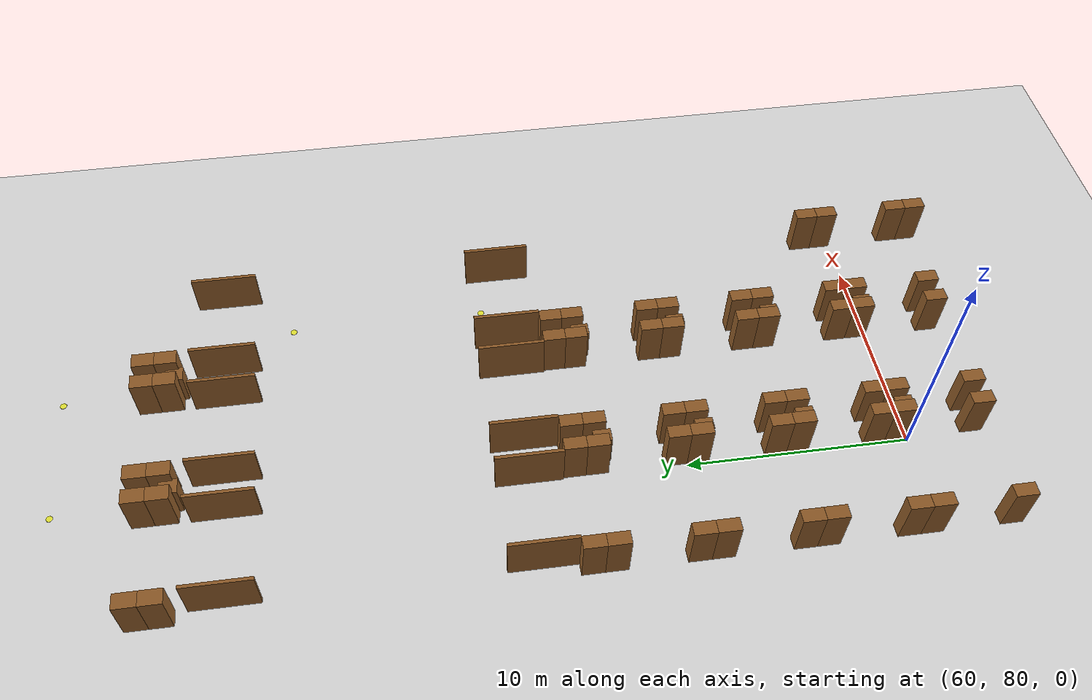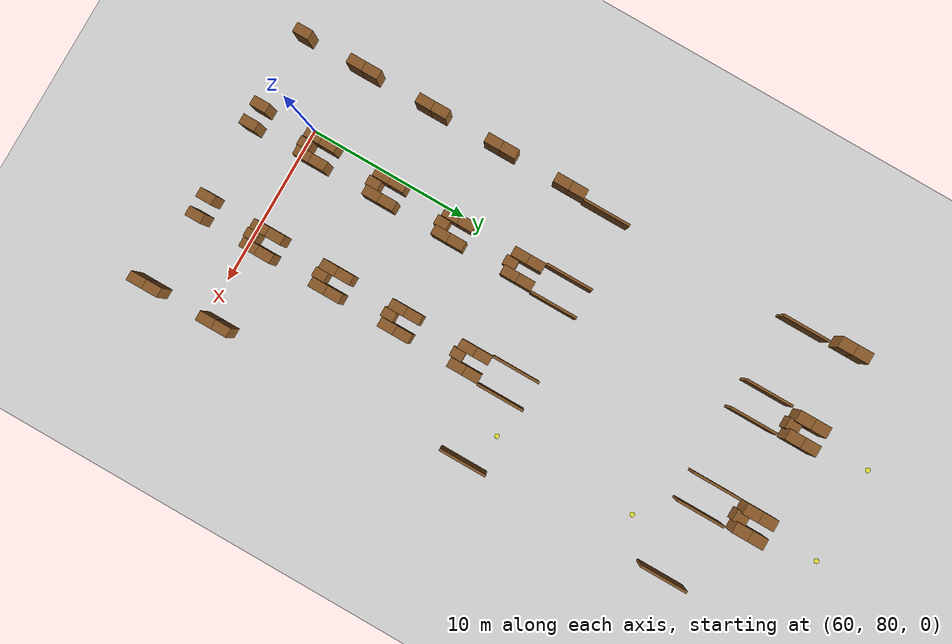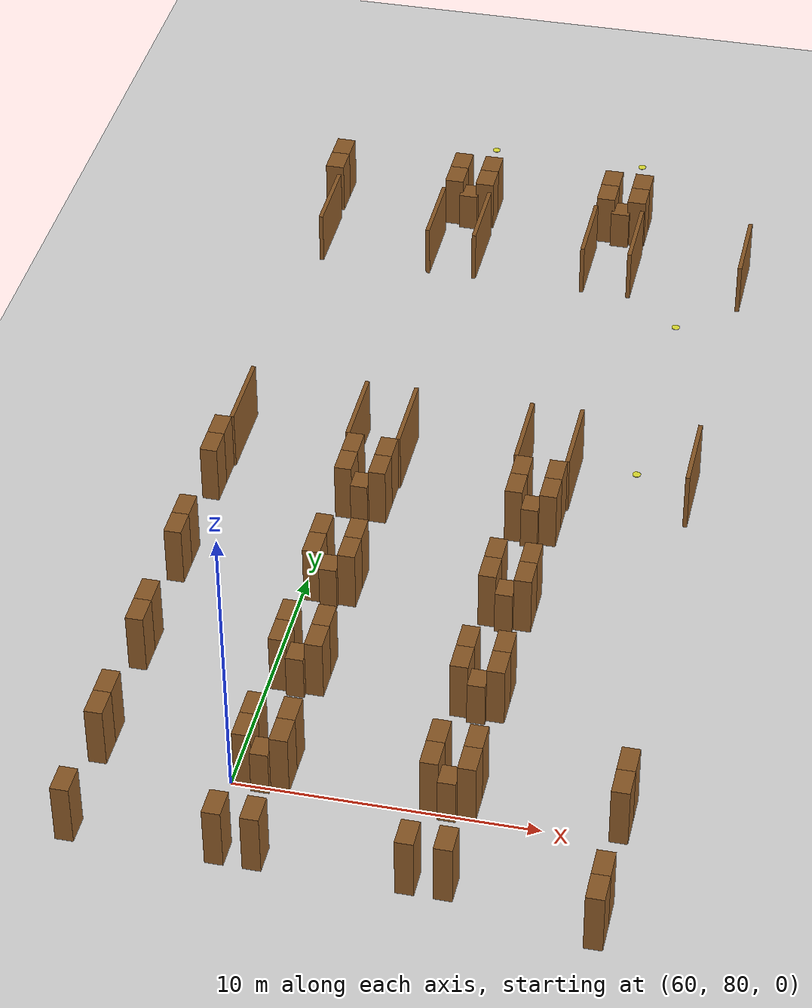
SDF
<sdf version="1.9">
 <world name="realistic_warehouse_150x200m">
  <model name="ground_plane">
   <static>true</static>
   <pose>68.5 102.0 0 0 0 0</pose>
   <link name="ground_link">
    <visual name="ground_visual">
     <geometry><box><size>127.0 194.0 0.01</size></box></geometry>
     <material><ambient>0.85 0.85 0.85 1.0</ambient><diffuse>0.85 0.85 0.85 1.0</diffuse></material>
    </visual>
    <collision name="ground_visual_collision">
     <geometry><box><size>127.0 194.0 0.01</size></box></geometry>
    </collision>
    <collision name="ground_collision">
     <geometry><plane><normal>0 0 1</normal><size>127.0 194.0</size></plane></geometry>
    </collision>
   </link>
  </model>
  <model name="cross_Zone_E_entry_785">
   <static>true</static>
   <pose>70.0 107.0 0.01 0 0 0</pose>
   <link name="cross_Zone_E_entry_785_link">
    <visual name="cross_Zone_E_entry_785_vis">
     <geometry><cylinder><radius>0.15</radius><length>0.02</length></cylinder></geometry>
     <material><ambient>0.9 0.9 0.2 1.0</ambient><diffuse>0.9 0.9 0.2 1.0</diffuse></material>
    </visual>
    <collision name="cross_Zone_E_entry_785_vis_collision">
     <geometry><cylinder><radius>0.15</radius><length>0.02</length></cylinder></geometry>
    </collision>
   </link>
  </model>
  <model name="aisle_R_Zone_E_A0_entry_787">
   <static>true</static>
   <pose>55.9 110.0 1.0 0 0 0</pose>
   <link name="aisle_R_Zone_E_A0_entry_787_link">
    <visual name="aisle_R_Zone_E_A0_entry_787_vis">
     <geometry><box><size>0.15 3.0 2.0</size></box></geometry>
     <material><ambient>0.55 0.35 0.15 1.0</ambient><diffuse>0.55 0.35 0.15 1.0</diffuse></material>
    </visual>
    <collision name="aisle_R_Zone_E_A0_entry_787_vis_collision">
     <geometry><box><size>0.15 3.0 2.0</size></box></geometry>
    </collision>
   </link>
  </model>
  <model name="rack_Zone_E_A0_S0_790">
   <static>true</static>
   <pose>55.6 112.5 1.0 0 0 0</pose>
   <link name="rack_Zone_E_A0_S0_790_link">
    <visual name="rack_Zone_E_A0_S0_790_vis">
     <geometry><box><size>0.7 1.0 2.0</size></box></geometry>
     <material><ambient>0.55 0.35 0.15 1.0</ambient><diffuse>0.55 0.35 0.15 1.0</diffuse></material>
    </visual>
    <collision name="rack_Zone_E_A0_S0_790_vis_collision">
     <geometry><box><size>0.7 1.0 2.0</size></box></geometry>
    </collision>
   </link>
  </model>
  <model name="rack_Zone_E_A0_S0_791">
   <static>true</static>
   <pose>55.6 113.5 1.0 0 0 0</pose>
   <link name="rack_Zone_E_A0_S0_791_link">
    <visual name="rack_Zone_E_A0_S0_791_vis">
     <geometry><box><size>0.7 1.0 2.0</size></box></geometry>
     <material><ambient>0.55 0.35 0.15 1.0</ambient><diffuse>0.55 0.35 0.15 1.0</diffuse></material>
    </visual>
    <collision name="rack_Zone_E_A0_S0_791_vis_collision">
     <geometry><box><size>0.7 1.0 2.0</size></box></geometry>
    </collision>
   </link>
  </model>
  <model name="aisle_L_Zone_E_A1_entry_806">
   <static>true</static>
   <pose>60.1 110.0 1.0 0 0 0</pose>
   <link name="aisle_L_Zone_E_A1_entry_806_link">
    <visual name="aisle_L_Zone_E_A1_entry_806_vis">
     <geometry><box><size>0.15 3.0 2.0</size></box></geometry>
     <material><ambient>0.55 0.35 0.15 1.0</ambient><diffuse>0.55 0.35 0.15 1.0</diffuse></material>
    </visual>
    <collision name="aisle_L_Zone_E_A1_entry_806_vis_collision">
     <geometry><box><size>0.15 3.0 2.0</size></box></geometry>
    </collision>
   </link>
  </model>
  <model name="aisle_R_Zone_E_A1_entry_807">
   <static>true</static>
   <pose>61.9 110.0 1.0 0 0 0</pose>
   <link name="aisle_R_Zone_E_A1_entry_807_link">
    <visual name="aisle_R_Zone_E_A1_entry_807_vis">
     <geometry><box><size>0.15 3.0 2.0</size></box></geometry>
     <material><ambient>0.55 0.35 0.15 1.0</ambient><diffuse>0.55 0.35 0.15 1.0</diffuse></material>
    </visual>
    <collision name="aisle_R_Zone_E_A1_entry_807_vis_collision">
     <geometry><box><size>0.15 3.0 2.0</size></box></geometry>
    </collision>
   </link>
  </model>
  <model name="rack_Zone_E_A1_S0_808">
   <static>true</static>
   <pose>60.4 112.5 1.0 0 0 0</pose>
   <link name="rack_Zone_E_A1_S0_808_link">
    <visual name="rack_Zone_E_A1_S0_808_vis">
     <geometry><box><size>0.7 1.0 2.0</size></box></geometry>
     <material><ambient>0.55 0.35 0.15 1.0</ambient><diffuse>0.55 0.35 0.15 1.0</diffuse></material>
    </visual>
    <collision name="rack_Zone_E_A1_S0_808_vis_collision">
     <geometry><box><size>0.7 1.0 2.0</size></box></geometry>
    </collision>
   </link>
  </model>
  <model name="rack_Zone_E_A1_S0_809">
   <static>true</static>
   <pose>60.4 113.5 1.0 0 0 0</pose>
   <link name="rack_Zone_E_A1_S0_809_link">
    <visual name="rack_Zone_E_A1_S0_809_vis">
     <geometry><box><size>0.7 1.0 2.0</size></box></geometry>
     <material><ambient>0.55 0.35 0.15 1.0</ambient><diffuse>0.55 0.35 0.15 1.0</diffuse></material>
    </visual>
    <collision name="rack_Zone_E_A1_S0_809_vis_collision">
     <geometry><box><size>0.7 1.0 2.0</size></box></geometry>
    </collision>
   </link>
  </model>
  <model name="rack_Zone_E_A1_S0_810">
   <static>true</static>
   <pose>61.6 112.5 1.0 0 0 0</pose>
   <link name="rack_Zone_E_A1_S0_810_link">
    <visual name="rack_Zone_E_A1_S0_810_vis">
     <geometry><box><size>0.7 1.0 2.0</size></box></geometry>
     <material><ambient>0.55 0.35 0.15 1.0</ambient><diffuse>0.55 0.35 0.15 1.0</diffuse></material>
    </visual>
    <collision name="rack_Zone_E_A1_S0_810_vis_collision">
     <geometry><box><size>0.7 1.0 2.0</size></box></geometry>
    </collision>
   </link>
  </model>
  <model name="rack_Zone_E_A1_S0_811">
   <static>true</static>
   <pose>61.6 113.5 1.0 0 0 0</pose>
   <link name="rack_Zone_E_A1_S0_811_link">
    <visual name="rack_Zone_E_A1_S0_811_vis">
     <geometry><box><size>0.7 1.0 2.0</size></box></geometry>
     <material><ambient>0.55 0.35 0.15 1.0</ambient><diffuse>0.55 0.35 0.15 1.0</diffuse></material>
    </visual>
    <collision name="rack_Zone_E_A1_S0_811_vis_collision">
     <geometry><box><size>0.7 1.0 2.0</size></box></geometry>
    </collision>
   </link>
  </model>
  <model name="rack_Zone_E_A1_S0_812">
   <static>true</static>
   <pose>61.0 112.2 0.75 0 0 0</pose>
   <link name="rack_Zone_E_A1_S0_812_link">
    <visual name="rack_Zone_E_A1_S0_812_vis">
     <geometry><box><size>0.7 0.8 1.5</size></box></geometry>
     <material><ambient>0.55 0.35 0.15 1.0</ambient><diffuse>0.55 0.35 0.15 1.0</diffuse></material>
    </visual>
    <collision name="rack_Zone_E_A1_S0_812_vis_collision">
     <geometry><box><size>0.7 0.8 1.5</size></box></geometry>
    </collision>
   </link>
  </model>
  <model name="cross_Zone_E_A1_S1_813">
   <static>true</static>
   <pose>61.0 117.5 0.01 0 0 0</pose>
   <link name="cross_Zone_E_A1_S1_813_link">
    <visual name="cross_Zone_E_A1_S1_813_vis">
     <geometry><cylinder><radius>0.15</radius><length>0.02</length></cylinder></geometry>
     <material><ambient>0.9 0.9 0.2 1.0</ambient><diffuse>0.9 0.9 0.2 1.0</diffuse></material>
    </visual>
    <collision name="cross_Zone_E_A1_S1_813_vis_collision">
     <geometry><cylinder><radius>0.15</radius><length>0.02</length></cylinder></geometry>
    </collision>
   </link>
  </model>
  <model name="aisle_L_Zone_E_A2_entry_826">
   <static>true</static>
   <pose>66.1 110.0 1.0 0 0 0</pose>
   <link name="aisle_L_Zone_E_A2_entry_826_link">
    <visual name="aisle_L_Zone_E_A2_entry_826_vis">
     <geometry><box><size>0.15 3.0 2.0</size></box></geometry>
     <material><ambient>0.55 0.35 0.15 1.0</ambient><diffuse>0.55 0.35 0.15 1.0</diffuse></material>
    </visual>
    <collision name="aisle_L_Zone_E_A2_entry_826_vis_collision">
     <geometry><box><size>0.15 3.0 2.0</size></box></geometry>
    </collision>
   </link>
  </model>
  <model name="aisle_R_Zone_E_A2_entry_827">
   <static>true</static>
   <pose>67.9 110.0 1.0 0 0 0</pose>
   <link name="aisle_R_Zone_E_A2_entry_827_link">
    <visual name="aisle_R_Zone_E_A2_entry_827_vis">
     <geometry><box><size>0.15 3.0 2.0</size></box></geometry>
     <material><ambient>0.55 0.35 0.15 1.0</ambient><diffuse>0.55 0.35 0.15 1.0</diffuse></material>
    </visual>
    <collision name="aisle_R_Zone_E_A2_entry_827_vis_collision">
     <geometry><box><size>0.15 3.0 2.0</size></box></geometry>
    </collision>
   </link>
  </model>
  <model name="rack_Zone_E_A2_S0_828">
   <static>true</static>
   <pose>66.4 112.5 1.0 0 0 0</pose>
   <link name="rack_Zone_E_A2_S0_828_link">
    <visual name="rack_Zone_E_A2_S0_828_vis">
     <geometry><box><size>0.7 1.0 2.0</size></box></geometry>
     <material><ambient>0.55 0.35 0.15 1.0</ambient><diffuse>0.55 0.35 0.15 1.0</diffuse></material>
    </visual>
    <collision name="rack_Zone_E_A2_S0_828_vis_collision">
     <geometry><box><size>0.7 1.0 2.0</size></box></geometry>
    </collision>
   </link>
  </model>
  <model name="rack_Zone_E_A2_S0_829">
   <static>true</static>
   <pose>66.4 113.5 1.0 0 0 0</pose>
   <link name="rack_Zone_E_A2_S0_829_link">
    <visual name="rack_Zone_E_A2_S0_829_vis">
     <geometry><box><size>0.7 1.0 2.0</size></box></geometry>
     <material><ambient>0.55 0.35 0.15 1.0</ambient><diffuse>0.55 0.35 0.15 1.0</diffuse></material>
    </visual>
    <collision name="rack_Zone_E_A2_S0_829_vis_collision">
     <geometry><box><size>0.7 1.0 2.0</size></box></geometry>
    </collision>
   </link>
  </model>
  <model name="rack_Zone_E_A2_S0_830">
   <static>true</static>
   <pose>67.6 112.5 1.0 0 0 0</pose>
   <link name="rack_Zone_E_A2_S0_830_link">
    <visual name="rack_Zone_E_A2_S0_830_vis">
     <geometry><box><size>0.7 1.0 2.0</size></box></geometry>
     <material><ambient>0.55 0.35 0.15 1.0</ambient><diffuse>0.55 0.35 0.15 1.0</diffuse></material>
    </visual>
    <collision name="rack_Zone_E_A2_S0_830_vis_collision">
     <geometry><box><size>0.7 1.0 2.0</size></box></geometry>
    </collision>
   </link>
  </model>
  <model name="rack_Zone_E_A2_S0_831">
   <static>true</static>
   <pose>67.6 113.5 1.0 0 0 0</pose>
   <link name="rack_Zone_E_A2_S0_831_link">
    <visual name="rack_Zone_E_A2_S0_831_vis">
     <geometry><box><size>0.7 1.0 2.0</size></box></geometry>
     <material><ambient>0.55 0.35 0.15 1.0</ambient><diffuse>0.55 0.35 0.15 1.0</diffuse></material>
    </visual>
    <collision name="rack_Zone_E_A2_S0_831_vis_collision">
     <geometry><box><size>0.7 1.0 2.0</size></box></geometry>
    </collision>
   </link>
  </model>
  <model name="rack_Zone_E_A2_S0_832">
   <static>true</static>
   <pose>67.0 112.2 0.75 0 0 0</pose>
   <link name="rack_Zone_E_A2_S0_832_link">
    <visual name="rack_Zone_E_A2_S0_832_vis">
     <geometry><box><size>0.7 0.8 1.5</size></box></geometry>
     <material><ambient>0.55 0.35 0.15 1.0</ambient><diffuse>0.55 0.35 0.15 1.0</diffuse></material>
    </visual>
    <collision name="rack_Zone_E_A2_S0_832_vis_collision">
     <geometry><box><size>0.7 0.8 1.5</size></box></geometry>
    </collision>
   </link>
  </model>
  <model name="cross_Zone_E_A2_S1_833">
   <static>true</static>
   <pose>67.0 117.5 0.01 0 0 0</pose>
   <link name="cross_Zone_E_A2_S1_833_link">
    <visual name="cross_Zone_E_A2_S1_833_vis">
     <geometry><cylinder><radius>0.15</radius><length>0.02</length></cylinder></geometry>
     <material><ambient>0.9 0.9 0.2 1.0</ambient><diffuse>0.9 0.9 0.2 1.0</diffuse></material>
    </visual>
    <collision name="cross_Zone_E_A2_S1_833_vis_collision">
     <geometry><cylinder><radius>0.15</radius><length>0.02</length></cylinder></geometry>
    </collision>
   </link>
  </model>
  <model name="aisle_L_Zone_E_A3_entry_846">
   <static>true</static>
   <pose>72.1 110.0 1.0 0 0 0</pose>
   <link name="aisle_L_Zone_E_A3_entry_846_link">
    <visual name="aisle_L_Zone_E_A3_entry_846_vis">
     <geometry><box><size>0.15 3.0 2.0</size></box></geometry>
     <material><ambient>0.55 0.35 0.15 1.0</ambient><diffuse>0.55 0.35 0.15 1.0</diffuse></material>
    </visual>
    <collision name="aisle_L_Zone_E_A3_entry_846_vis_collision">
     <geometry><box><size>0.15 3.0 2.0</size></box></geometry>
    </collision>
   </link>
  </model>
  <model name="rack_Zone_H_A0_S3_1241">
   <static>true</static>
   <pose>55.6 77.0 1.1 0 0 0</pose>
   <link name="rack_Zone_H_A0_S3_1241_link">
    <visual name="rack_Zone_H_A0_S3_1241_vis">
     <geometry><box><size>0.6 1.0 2.2</size></box></geometry>
     <material><ambient>0.55 0.35 0.15 1.0</ambient><diffuse>0.55 0.35 0.15 1.0</diffuse></material>
    </visual>
    <collision name="rack_Zone_H_A0_S3_1241_vis_collision">
     <geometry><box><size>0.6 1.0 2.2</size></box></geometry>
    </collision>
   </link>
  </model>
  <model name="rack_Zone_H_A0_S4_1245">
   <static>true</static>
   <pose>55.6 80.5 1.1 0 0 0</pose>
   <link name="rack_Zone_H_A0_S4_1245_link">
    <visual name="rack_Zone_H_A0_S4_1245_vis">
     <geometry><box><size>0.6 1.0 2.2</size></box></geometry>
     <material><ambient>0.55 0.35 0.15 1.0</ambient><diffuse>0.55 0.35 0.15 1.0</diffuse></material>
    </visual>
    <collision name="rack_Zone_H_A0_S4_1245_vis_collision">
     <geometry><box><size>0.6 1.0 2.2</size></box></geometry>
    </collision>
   </link>
  </model>
  <model name="rack_Zone_H_A0_S4_1246">
   <static>true</static>
   <pose>55.6 81.5 1.1 0 0 0</pose>
   <link name="rack_Zone_H_A0_S4_1246_link">
    <visual name="rack_Zone_H_A0_S4_1246_vis">
     <geometry><box><size>0.6 1.0 2.2</size></box></geometry>
     <material><ambient>0.55 0.35 0.15 1.0</ambient><diffuse>0.55 0.35 0.15 1.0</diffuse></material>
    </visual>
    <collision name="rack_Zone_H_A0_S4_1246_vis_collision">
     <geometry><box><size>0.6 1.0 2.2</size></box></geometry>
    </collision>
   </link>
  </model>
  <model name="rack_Zone_H_A0_S5_1250">
   <static>true</static>
   <pose>55.6 85.0 1.1 0 0 0</pose>
   <link name="rack_Zone_H_A0_S5_1250_link">
    <visual name="rack_Zone_H_A0_S5_1250_vis">
     <geometry><box><size>0.6 1.0 2.2</size></box></geometry>
     <material><ambient>0.55 0.35 0.15 1.0</ambient><diffuse>0.55 0.35 0.15 1.0</diffuse></material>
    </visual>
    <collision name="rack_Zone_H_A0_S5_1250_vis_collision">
     <geometry><box><size>0.6 1.0 2.2</size></box></geometry>
    </collision>
   </link>
  </model>
  <model name="rack_Zone_H_A0_S5_1251">
   <static>true</static>
   <pose>55.6 86.0 1.1 0 0 0</pose>
   <link name="rack_Zone_H_A0_S5_1251_link">
    <visual name="rack_Zone_H_A0_S5_1251_vis">
     <geometry><box><size>0.6 1.0 2.2</size></box></geometry>
     <material><ambient>0.55 0.35 0.15 1.0</ambient><diffuse>0.55 0.35 0.15 1.0</diffuse></material>
    </visual>
    <collision name="rack_Zone_H_A0_S5_1251_vis_collision">
     <geometry><box><size>0.6 1.0 2.2</size></box></geometry>
    </collision>
   </link>
  </model>
  <model name="rack_Zone_H_A0_S6_1255">
   <static>true</static>
   <pose>55.6 89.5 1.1 0 0 0</pose>
   <link name="rack_Zone_H_A0_S6_1255_link">
    <visual name="rack_Zone_H_A0_S6_1255_vis">
     <geometry><box><size>0.6 1.0 2.2</size></box></geometry>
     <material><ambient>0.55 0.35 0.15 1.0</ambient><diffuse>0.55 0.35 0.15 1.0</diffuse></material>
    </visual>
    <collision name="rack_Zone_H_A0_S6_1255_vis_collision">
     <geometry><box><size>0.6 1.0 2.2</size></box></geometry>
    </collision>
   </link>
  </model>
  <model name="rack_Zone_H_A0_S6_1256">
   <static>true</static>
   <pose>55.6 90.5 1.1 0 0 0</pose>
   <link name="rack_Zone_H_A0_S6_1256_link">
    <visual name="rack_Zone_H_A0_S6_1256_vis">
     <geometry><box><size>0.6 1.0 2.2</size></box></geometry>
     <material><ambient>0.55 0.35 0.15 1.0</ambient><diffuse>0.55 0.35 0.15 1.0</diffuse></material>
    </visual>
    <collision name="rack_Zone_H_A0_S6_1256_vis_collision">
     <geometry><box><size>0.6 1.0 2.2</size></box></geometry>
    </collision>
   </link>
  </model>
  <model name="rack_Zone_H_A0_S7_1260">
   <static>true</static>
   <pose>55.6 94.0 1.1 0 0 0</pose>
   <link name="rack_Zone_H_A0_S7_1260_link">
    <visual name="rack_Zone_H_A0_S7_1260_vis">
     <geometry><box><size>0.6 1.0 2.2</size></box></geometry>
     <material><ambient>0.55 0.35 0.15 1.0</ambient><diffuse>0.55 0.35 0.15 1.0</diffuse></material>
    </visual>
    <collision name="rack_Zone_H_A0_S7_1260_vis_collision">
     <geometry><box><size>0.6 1.0 2.2</size></box></geometry>
    </collision>
   </link>
  </model>
  <model name="rack_Zone_H_A0_S7_1261">
   <static>true</static>
   <pose>55.6 95.0 1.1 0 0 0</pose>
   <link name="rack_Zone_H_A0_S7_1261_link">
    <visual name="rack_Zone_H_A0_S7_1261_vis">
     <geometry><box><size>0.6 1.0 2.2</size></box></geometry>
     <material><ambient>0.55 0.35 0.15 1.0</ambient><diffuse>0.55 0.35 0.15 1.0</diffuse></material>
    </visual>
    <collision name="rack_Zone_H_A0_S7_1261_vis_collision">
     <geometry><box><size>0.6 1.0 2.2</size></box></geometry>
    </collision>
   </link>
  </model>
  <model name="aisle_R_Zone_H_A0_exit_1264">
   <static>true</static>
   <pose>55.9 97.0 1.1 0 0 0</pose>
   <link name="aisle_R_Zone_H_A0_exit_1264_link">
    <visual name="aisle_R_Zone_H_A0_exit_1264_vis">
     <geometry><box><size>0.15 3.0 2.2</size></box></geometry>
     <material><ambient>0.55 0.35 0.15 1.0</ambient><diffuse>0.55 0.35 0.15 1.0</diffuse></material>
    </visual>
    <collision name="aisle_R_Zone_H_A0_exit_1264_vis_collision">
     <geometry><box><size>0.15 3.0 2.2</size></box></geometry>
    </collision>
   </link>
  </model>
  <model name="rack_Zone_H_A1_S3_1283">
   <static>true</static>
   <pose>60.4 77.0 1.1 0 0 0</pose>
   <link name="rack_Zone_H_A1_S3_1283_link">
    <visual name="rack_Zone_H_A1_S3_1283_vis">
     <geometry><box><size>0.6 1.0 2.2</size></box></geometry>
     <material><ambient>0.55 0.35 0.15 1.0</ambient><diffuse>0.55 0.35 0.15 1.0</diffuse></material>
    </visual>
    <collision name="rack_Zone_H_A1_S3_1283_vis_collision">
     <geometry><box><size>0.6 1.0 2.2</size></box></geometry>
    </collision>
   </link>
  </model>
  <model name="rack_Zone_H_A1_S3_1285">
   <static>true</static>
   <pose>61.6 77.0 1.1 0 0 0</pose>
   <link name="rack_Zone_H_A1_S3_1285_link">
    <visual name="rack_Zone_H_A1_S3_1285_vis">
     <geometry><box><size>0.6 1.0 2.2</size></box></geometry>
     <material><ambient>0.55 0.35 0.15 1.0</ambient><diffuse>0.55 0.35 0.15 1.0</diffuse></material>
    </visual>
    <collision name="rack_Zone_H_A1_S3_1285_vis_collision">
     <geometry><box><size>0.6 1.0 2.2</size></box></geometry>
    </collision>
   </link>
  </model>
  <model name="rack_Zone_H_A1_S4_1287">
   <static>true</static>
   <pose>60.4 80.5 1.1 0 0 0</pose>
   <link name="rack_Zone_H_A1_S4_1287_link">
    <visual name="rack_Zone_H_A1_S4_1287_vis">
     <geometry><box><size>0.6 1.0 2.2</size></box></geometry>
     <material><ambient>0.55 0.35 0.15 1.0</ambient><diffuse>0.55 0.35 0.15 1.0</diffuse></material>
    </visual>
    <collision name="rack_Zone_H_A1_S4_1287_vis_collision">
     <geometry><box><size>0.6 1.0 2.2</size></box></geometry>
    </collision>
   </link>
  </model>
  <model name="rack_Zone_H_A1_S4_1288">
   <static>true</static>
   <pose>60.4 81.5 1.1 0 0 0</pose>
   <link name="rack_Zone_H_A1_S4_1288_link">
    <visual name="rack_Zone_H_A1_S4_1288_vis">
     <geometry><box><size>0.6 1.0 2.2</size></box></geometry>
     <material><ambient>0.55 0.35 0.15 1.0</ambient><diffuse>0.55 0.35 0.15 1.0</diffuse></material>
    </visual>
    <collision name="rack_Zone_H_A1_S4_1288_vis_collision">
     <geometry><box><size>0.6 1.0 2.2</size></box></geometry>
    </collision>
   </link>
  </model>
  <model name="rack_Zone_H_A1_S4_1289">
   <static>true</static>
   <pose>61.6 80.5 1.1 0 0 0</pose>
   <link name="rack_Zone_H_A1_S4_1289_link">
    <visual name="rack_Zone_H_A1_S4_1289_vis">
     <geometry><box><size>0.6 1.0 2.2</size></box></geometry>
     <material><ambient>0.55 0.35 0.15 1.0</ambient><diffuse>0.55 0.35 0.15 1.0</diffuse></material>
    </visual>
    <collision name="rack_Zone_H_A1_S4_1289_vis_collision">
     <geometry><box><size>0.6 1.0 2.2</size></box></geometry>
    </collision>
   </link>
  </model>
  <model name="rack_Zone_H_A1_S4_1290">
   <static>true</static>
   <pose>61.6 81.5 1.1 0 0 0</pose>
   <link name="rack_Zone_H_A1_S4_1290_link">
    <visual name="rack_Zone_H_A1_S4_1290_vis">
     <geometry><box><size>0.6 1.0 2.2</size></box></geometry>
     <material><ambient>0.55 0.35 0.15 1.0</ambient><diffuse>0.55 0.35 0.15 1.0</diffuse></material>
    </visual>
    <collision name="rack_Zone_H_A1_S4_1290_vis_collision">
     <geometry><box><size>0.6 1.0 2.2</size></box></geometry>
    </collision>
   </link>
  </model>
  <model name="rack_Zone_H_A1_S4_1291">
   <static>true</static>
   <pose>61.0 80.2 0.8250000000000001 0 0 0</pose>
   <link name="rack_Zone_H_A1_S4_1291_link">
    <visual name="rack_Zone_H_A1_S4_1291_vis">
     <geometry><box><size>0.6 0.8 1.6500000000000001</size></box></geometry>
     <material><ambient>0.55 0.35 0.15 1.0</ambient><diffuse>0.55 0.35 0.15 1.0</diffuse></material>
    </visual>
    <collision name="rack_Zone_H_A1_S4_1291_vis_collision">
     <geometry><box><size>0.6 0.8 1.6500000000000001</size></box></geometry>
    </collision>
   </link>
  </model>
  <model name="rack_Zone_H_A1_S5_1292">
   <static>true</static>
   <pose>60.4 85.0 1.1 0 0 0</pose>
   <link name="rack_Zone_H_A1_S5_1292_link">
    <visual name="rack_Zone_H_A1_S5_1292_vis">
     <geometry><box><size>0.6 1.0 2.2</size></box></geometry>
     <material><ambient>0.55 0.35 0.15 1.0</ambient><diffuse>0.55 0.35 0.15 1.0</diffuse></material>
    </visual>
    <collision name="rack_Zone_H_A1_S5_1292_vis_collision">
     <geometry><box><size>0.6 1.0 2.2</size></box></geometry>
    </collision>
   </link>
  </model>
  <model name="rack_Zone_H_A1_S5_1293">
   <static>true</static>
   <pose>60.4 86.0 1.1 0 0 0</pose>
   <link name="rack_Zone_H_A1_S5_1293_link">
    <visual name="rack_Zone_H_A1_S5_1293_vis">
     <geometry><box><size>0.6 1.0 2.2</size></box></geometry>
     <material><ambient>0.55 0.35 0.15 1.0</ambient><diffuse>0.55 0.35 0.15 1.0</diffuse></material>
    </visual>
    <collision name="rack_Zone_H_A1_S5_1293_vis_collision">
     <geometry><box><size>0.6 1.0 2.2</size></box></geometry>
    </collision>
   </link>
  </model>
  <model name="rack_Zone_H_A1_S5_1294">
   <static>true</static>
   <pose>61.6 85.0 1.1 0 0 0</pose>
   <link name="rack_Zone_H_A1_S5_1294_link">
    <visual name="rack_Zone_H_A1_S5_1294_vis">
     <geometry><box><size>0.6 1.0 2.2</size></box></geometry>
     <material><ambient>0.55 0.35 0.15 1.0</ambient><diffuse>0.55 0.35 0.15 1.0</diffuse></material>
    </visual>
    <collision name="rack_Zone_H_A1_S5_1294_vis_collision">
     <geometry><box><size>0.6 1.0 2.2</size></box></geometry>
    </collision>
   </link>
  </model>
  <model name="rack_Zone_H_A1_S5_1295">
   <static>true</static>
   <pose>61.6 86.0 1.1 0 0 0</pose>
   <link name="rack_Zone_H_A1_S5_1295_link">
    <visual name="rack_Zone_H_A1_S5_1295_vis">
     <geometry><box><size>0.6 1.0 2.2</size></box></geometry>
     <material><ambient>0.55 0.35 0.15 1.0</ambient><diffuse>0.55 0.35 0.15 1.0</diffuse></material>
    </visual>
    <collision name="rack_Zone_H_A1_S5_1295_vis_collision">
     <geometry><box><size>0.6 1.0 2.2</size></box></geometry>
    </collision>
   </link>
  </model>
  <model name="rack_Zone_H_A1_S5_1296">
   <static>true</static>
   <pose>61.0 84.7 0.8250000000000001 0 0 0</pose>
   <link name="rack_Zone_H_A1_S5_1296_link">
    <visual name="rack_Zone_H_A1_S5_1296_vis">
     <geometry><box><size>0.6 0.8 1.6500000000000001</size></box></geometry>
     <material><ambient>0.55 0.35 0.15 1.0</ambient><diffuse>0.55 0.35 0.15 1.0</diffuse></material>
    </visual>
    <collision name="rack_Zone_H_A1_S5_1296_vis_collision">
     <geometry><box><size>0.6 0.8 1.6500000000000001</size></box></geometry>
    </collision>
   </link>
  </model>
  <model name="rack_Zone_H_A1_S6_1297">
   <static>true</static>
   <pose>60.4 89.5 1.1 0 0 0</pose>
   <link name="rack_Zone_H_A1_S6_1297_link">
    <visual name="rack_Zone_H_A1_S6_1297_vis">
     <geometry><box><size>0.6 1.0 2.2</size></box></geometry>
     <material><ambient>0.55 0.35 0.15 1.0</ambient><diffuse>0.55 0.35 0.15 1.0</diffuse></material>
    </visual>
    <collision name="rack_Zone_H_A1_S6_1297_vis_collision">
     <geometry><box><size>0.6 1.0 2.2</size></box></geometry>
    </collision>
   </link>
  </model>
  <model name="rack_Zone_H_A1_S6_1298">
   <static>true</static>
   <pose>60.4 90.5 1.1 0 0 0</pose>
   <link name="rack_Zone_H_A1_S6_1298_link">
    <visual name="rack_Zone_H_A1_S6_1298_vis">
     <geometry><box><size>0.6 1.0 2.2</size></box></geometry>
     <material><ambient>0.55 0.35 0.15 1.0</ambient><diffuse>0.55 0.35 0.15 1.0</diffuse></material>
    </visual>
    <collision name="rack_Zone_H_A1_S6_1298_vis_collision">
     <geometry><box><size>0.6 1.0 2.2</size></box></geometry>
    </collision>
   </link>
  </model>
  <model name="rack_Zone_H_A1_S6_1299">
   <static>true</static>
   <pose>61.6 89.5 1.1 0 0 0</pose>
   <link name="rack_Zone_H_A1_S6_1299_link">
    <visual name="rack_Zone_H_A1_S6_1299_vis">
     <geometry><box><size>0.6 1.0 2.2</size></box></geometry>
     <material><ambient>0.55 0.35 0.15 1.0</ambient><diffuse>0.55 0.35 0.15 1.0</diffuse></material>
    </visual>
    <collision name="rack_Zone_H_A1_S6_1299_vis_collision">
     <geometry><box><size>0.6 1.0 2.2</size></box></geometry>
    </collision>
   </link>
  </model>
  <model name="rack_Zone_H_A1_S6_1300">
   <static>true</static>
   <pose>61.6 90.5 1.1 0 0 0</pose>
   <link name="rack_Zone_H_A1_S6_1300_link">
    <visual name="rack_Zone_H_A1_S6_1300_vis">
     <geometry><box><size>0.6 1.0 2.2</size></box></geometry>
     <material><ambient>0.55 0.35 0.15 1.0</ambient><diffuse>0.55 0.35 0.15 1.0</diffuse></material>
    </visual>
    <collision name="rack_Zone_H_A1_S6_1300_vis_collision">
     <geometry><box><size>0.6 1.0 2.2</size></box></geometry>
    </collision>
   </link>
  </model>
  <model name="rack_Zone_H_A1_S6_1301">
   <static>true</static>
   <pose>61.0 89.2 0.8250000000000001 0 0 0</pose>
   <link name="rack_Zone_H_A1_S6_1301_link">
    <visual name="rack_Zone_H_A1_S6_1301_vis">
     <geometry><box><size>0.6 0.8 1.6500000000000001</size></box></geometry>
     <material><ambient>0.55 0.35 0.15 1.0</ambient><diffuse>0.55 0.35 0.15 1.0</diffuse></material>
    </visual>
    <collision name="rack_Zone_H_A1_S6_1301_vis_collision">
     <geometry><box><size>0.6 0.8 1.6500000000000001</size></box></geometry>
    </collision>
   </link>
  </model>
  <model name="rack_Zone_H_A1_S7_1302">
   <static>true</static>
   <pose>60.4 94.0 1.1 0 0 0</pose>
   <link name="rack_Zone_H_A1_S7_1302_link">
    <visual name="rack_Zone_H_A1_S7_1302_vis">
     <geometry><box><size>0.6 1.0 2.2</size></box></geometry>
     <material><ambient>0.55 0.35 0.15 1.0</ambient><diffuse>0.55 0.35 0.15 1.0</diffuse></material>
    </visual>
    <collision name="rack_Zone_H_A1_S7_1302_vis_collision">
     <geometry><box><size>0.6 1.0 2.2</size></box></geometry>
    </collision>
   </link>
  </model>
  <model name="rack_Zone_H_A1_S7_1303">
   <static>true</static>
   <pose>60.4 95.0 1.1 0 0 0</pose>
   <link name="rack_Zone_H_A1_S7_1303_link">
    <visual name="rack_Zone_H_A1_S7_1303_vis">
     <geometry><box><size>0.6 1.0 2.2</size></box></geometry>
     <material><ambient>0.55 0.35 0.15 1.0</ambient><diffuse>0.55 0.35 0.15 1.0</diffuse></material>
    </visual>
    <collision name="rack_Zone_H_A1_S7_1303_vis_collision">
     <geometry><box><size>0.6 1.0 2.2</size></box></geometry>
    </collision>
   </link>
  </model>
  <model name="rack_Zone_H_A1_S7_1304">
   <static>true</static>
   <pose>61.6 94.0 1.1 0 0 0</pose>
   <link name="rack_Zone_H_A1_S7_1304_link">
    <visual name="rack_Zone_H_A1_S7_1304_vis">
     <geometry><box><size>0.6 1.0 2.2</size></box></geometry>
     <material><ambient>0.55 0.35 0.15 1.0</ambient><diffuse>0.55 0.35 0.15 1.0</diffuse></material>
    </visual>
    <collision name="rack_Zone_H_A1_S7_1304_vis_collision">
     <geometry><box><size>0.6 1.0 2.2</size></box></geometry>
    </collision>
   </link>
  </model>
  <model name="rack_Zone_H_A1_S7_1305">
   <static>true</static>
   <pose>61.6 95.0 1.1 0 0 0</pose>
   <link name="rack_Zone_H_A1_S7_1305_link">
    <visual name="rack_Zone_H_A1_S7_1305_vis">
     <geometry><box><size>0.6 1.0 2.2</size></box></geometry>
     <material><ambient>0.55 0.35 0.15 1.0</ambient><diffuse>0.55 0.35 0.15 1.0</diffuse></material>
    </visual>
    <collision name="rack_Zone_H_A1_S7_1305_vis_collision">
     <geometry><box><size>0.6 1.0 2.2</size></box></geometry>
    </collision>
   </link>
  </model>
  <model name="rack_Zone_H_A1_S7_1306">
   <static>true</static>
   <pose>61.0 93.7 0.8250000000000001 0 0 0</pose>
   <link name="rack_Zone_H_A1_S7_1306_link">
    <visual name="rack_Zone_H_A1_S7_1306_vis">
     <geometry><box><size>0.6 0.8 1.6500000000000001</size></box></geometry>
     <material><ambient>0.55 0.35 0.15 1.0</ambient><diffuse>0.55 0.35 0.15 1.0</diffuse></material>
    </visual>
    <collision name="rack_Zone_H_A1_S7_1306_vis_collision">
     <geometry><box><size>0.6 0.8 1.6500000000000001</size></box></geometry>
    </collision>
   </link>
  </model>
  <model name="aisle_L_Zone_H_A1_exit_1307">
   <static>true</static>
   <pose>60.1 97.0 1.1 0 0 0</pose>
   <link name="aisle_L_Zone_H_A1_exit_1307_link">
    <visual name="aisle_L_Zone_H_A1_exit_1307_vis">
     <geometry><box><size>0.15 3.0 2.2</size></box></geometry>
     <material><ambient>0.55 0.35 0.15 1.0</ambient><diffuse>0.55 0.35 0.15 1.0</diffuse></material>
    </visual>
    <collision name="aisle_L_Zone_H_A1_exit_1307_vis_collision">
     <geometry><box><size>0.15 3.0 2.2</size></box></geometry>
    </collision>
   </link>
  </model>
  <model name="aisle_R_Zone_H_A1_exit_1308">
   <static>true</static>
   <pose>61.9 97.0 1.1 0 0 0</pose>
   <link name="aisle_R_Zone_H_A1_exit_1308_link">
    <visual name="aisle_R_Zone_H_A1_exit_1308_vis">
     <geometry><box><size>0.15 3.0 2.2</size></box></geometry>
     <material><ambient>0.55 0.35 0.15 1.0</ambient><diffuse>0.55 0.35 0.15 1.0</diffuse></material>
    </visual>
    <collision name="aisle_R_Zone_H_A1_exit_1308_vis_collision">
     <geometry><box><size>0.15 3.0 2.2</size></box></geometry>
    </collision>
   </link>
  </model>
  <model name="rack_Zone_H_A2_S3_1327">
   <static>true</static>
   <pose>66.4 77.0 1.1 0 0 0</pose>
   <link name="rack_Zone_H_A2_S3_1327_link">
    <visual name="rack_Zone_H_A2_S3_1327_vis">
     <geometry><box><size>0.6 1.0 2.2</size></box></geometry>
     <material><ambient>0.55 0.35 0.15 1.0</ambient><diffuse>0.55 0.35 0.15 1.0</diffuse></material>
    </visual>
    <collision name="rack_Zone_H_A2_S3_1327_vis_collision">
     <geometry><box><size>0.6 1.0 2.2</size></box></geometry>
    </collision>
   </link>
  </model>
  <model name="rack_Zone_H_A2_S3_1329">
   <static>true</static>
   <pose>67.6 77.0 1.1 0 0 0</pose>
   <link name="rack_Zone_H_A2_S3_1329_link">
    <visual name="rack_Zone_H_A2_S3_1329_vis">
     <geometry><box><size>0.6 1.0 2.2</size></box></geometry>
     <material><ambient>0.55 0.35 0.15 1.0</ambient><diffuse>0.55 0.35 0.15 1.0</diffuse></material>
    </visual>
    <collision name="rack_Zone_H_A2_S3_1329_vis_collision">
     <geometry><box><size>0.6 1.0 2.2</size></box></geometry>
    </collision>
   </link>
  </model>
  <model name="rack_Zone_H_A2_S4_1331">
   <static>true</static>
   <pose>66.4 80.5 1.1 0 0 0</pose>
   <link name="rack_Zone_H_A2_S4_1331_link">
    <visual name="rack_Zone_H_A2_S4_1331_vis">
     <geometry><box><size>0.6 1.0 2.2</size></box></geometry>
     <material><ambient>0.55 0.35 0.15 1.0</ambient><diffuse>0.55 0.35 0.15 1.0</diffuse></material>
    </visual>
    <collision name="rack_Zone_H_A2_S4_1331_vis_collision">
     <geometry><box><size>0.6 1.0 2.2</size></box></geometry>
    </collision>
   </link>
  </model>
  <model name="rack_Zone_H_A2_S4_1332">
   <static>true</static>
   <pose>66.4 81.5 1.1 0 0 0</pose>
   <link name="rack_Zone_H_A2_S4_1332_link">
    <visual name="rack_Zone_H_A2_S4_1332_vis">
     <geometry><box><size>0.6 1.0 2.2</size></box></geometry>
     <material><ambient>0.55 0.35 0.15 1.0</ambient><diffuse>0.55 0.35 0.15 1.0</diffuse></material>
    </visual>
    <collision name="rack_Zone_H_A2_S4_1332_vis_collision">
     <geometry><box><size>0.6 1.0 2.2</size></box></geometry>
    </collision>
   </link>
  </model>
  <model name="rack_Zone_H_A2_S4_1333">
   <static>true</static>
   <pose>67.6 80.5 1.1 0 0 0</pose>
   <link name="rack_Zone_H_A2_S4_1333_link">
    <visual name="rack_Zone_H_A2_S4_1333_vis">
     <geometry><box><size>0.6 1.0 2.2</size></box></geometry>
     <material><ambient>0.55 0.35 0.15 1.0</ambient><diffuse>0.55 0.35 0.15 1.0</diffuse></material>
    </visual>
    <collision name="rack_Zone_H_A2_S4_1333_vis_collision">
     <geometry><box><size>0.6 1.0 2.2</size></box></geometry>
    </collision>
   </link>
  </model>
  <model name="rack_Zone_H_A2_S4_1334">
   <static>true</static>
   <pose>67.6 81.5 1.1 0 0 0</pose>
   <link name="rack_Zone_H_A2_S4_1334_link">
    <visual name="rack_Zone_H_A2_S4_1334_vis">
     <geometry><box><size>0.6 1.0 2.2</size></box></geometry>
     <material><ambient>0.55 0.35 0.15 1.0</ambient><diffuse>0.55 0.35 0.15 1.0</diffuse></material>
    </visual>
    <collision name="rack_Zone_H_A2_S4_1334_vis_collision">
     <geometry><box><size>0.6 1.0 2.2</size></box></geometry>
    </collision>
   </link>
  </model>
  <model name="rack_Zone_H_A2_S4_1335">
   <static>true</static>
   <pose>67.0 80.2 0.8250000000000001 0 0 0</pose>
   <link name="rack_Zone_H_A2_S4_1335_link">
    <visual name="rack_Zone_H_A2_S4_1335_vis">
     <geometry><box><size>0.6 0.8 1.6500000000000001</size></box></geometry>
     <material><ambient>0.55 0.35 0.15 1.0</ambient><diffuse>0.55 0.35 0.15 1.0</diffuse></material>
    </visual>
    <collision name="rack_Zone_H_A2_S4_1335_vis_collision">
     <geometry><box><size>0.6 0.8 1.6500000000000001</size></box></geometry>
    </collision>
   </link>
  </model>
  <model name="rack_Zone_H_A2_S5_1336">
   <static>true</static>
   <pose>66.4 85.0 1.1 0 0 0</pose>
   <link name="rack_Zone_H_A2_S5_1336_link">
    <visual name="rack_Zone_H_A2_S5_1336_vis">
     <geometry><box><size>0.6 1.0 2.2</size></box></geometry>
     <material><ambient>0.55 0.35 0.15 1.0</ambient><diffuse>0.55 0.35 0.15 1.0</diffuse></material>
    </visual>
    <collision name="rack_Zone_H_A2_S5_1336_vis_collision">
     <geometry><box><size>0.6 1.0 2.2</size></box></geometry>
    </collision>
   </link>
  </model>
  <model name="rack_Zone_H_A2_S5_1337">
   <static>true</static>
   <pose>66.4 86.0 1.1 0 0 0</pose>
   <link name="rack_Zone_H_A2_S5_1337_link">
    <visual name="rack_Zone_H_A2_S5_1337_vis">
     <geometry><box><size>0.6 1.0 2.2</size></box></geometry>
     <material><ambient>0.55 0.35 0.15 1.0</ambient><diffuse>0.55 0.35 0.15 1.0</diffuse></material>
    </visual>
    <collision name="rack_Zone_H_A2_S5_1337_vis_collision">
     <geometry><box><size>0.6 1.0 2.2</size></box></geometry>
    </collision>
   </link>
  </model>
  <model name="rack_Zone_H_A2_S5_1338">
   <static>true</static>
   <pose>67.6 85.0 1.1 0 0 0</pose>
   <link name="rack_Zone_H_A2_S5_1338_link">
    <visual name="rack_Zone_H_A2_S5_1338_vis">
     <geometry><box><size>0.6 1.0 2.2</size></box></geometry>
     <material><ambient>0.55 0.35 0.15 1.0</ambient><diffuse>0.55 0.35 0.15 1.0</diffuse></material>
    </visual>
    <collision name="rack_Zone_H_A2_S5_1338_vis_collision">
     <geometry><box><size>0.6 1.0 2.2</size></box></geometry>
    </collision>
   </link>
  </model>
  <model name="rack_Zone_H_A2_S5_1339">
   <static>true</static>
   <pose>67.6 86.0 1.1 0 0 0</pose>
   <link name="rack_Zone_H_A2_S5_1339_link">
    <visual name="rack_Zone_H_A2_S5_1339_vis">
     <geometry><box><size>0.6 1.0 2.2</size></box></geometry>
     <material><ambient>0.55 0.35 0.15 1.0</ambient><diffuse>0.55 0.35 0.15 1.0</diffuse></material>
    </visual>
    <collision name="rack_Zone_H_A2_S5_1339_vis_collision">
     <geometry><box><size>0.6 1.0 2.2</size></box></geometry>
    </collision>
   </link>
  </model>
  <model name="rack_Zone_H_A2_S5_1340">
   <static>true</static>
   <pose>67.0 84.7 0.8250000000000001 0 0 0</pose>
   <link name="rack_Zone_H_A2_S5_1340_link">
    <visual name="rack_Zone_H_A2_S5_1340_vis">
     <geometry><box><size>0.6 0.8 1.6500000000000001</size></box></geometry>
     <material><ambient>0.55 0.35 0.15 1.0</ambient><diffuse>0.55 0.35 0.15 1.0</diffuse></material>
    </visual>
    <collision name="rack_Zone_H_A2_S5_1340_vis_collision">
     <geometry><box><size>0.6 0.8 1.6500000000000001</size></box></geometry>
    </collision>
   </link>
  </model>
  <model name="rack_Zone_H_A2_S6_1341">
   <static>true</static>
   <pose>66.4 89.5 1.1 0 0 0</pose>
   <link name="rack_Zone_H_A2_S6_1341_link">
    <visual name="rack_Zone_H_A2_S6_1341_vis">
     <geometry><box><size>0.6 1.0 2.2</size></box></geometry>
     <material><ambient>0.55 0.35 0.15 1.0</ambient><diffuse>0.55 0.35 0.15 1.0</diffuse></material>
    </visual>
    <collision name="rack_Zone_H_A2_S6_1341_vis_collision">
     <geometry><box><size>0.6 1.0 2.2</size></box></geometry>
    </collision>
   </link>
  </model>
  <model name="rack_Zone_H_A2_S6_1342">
   <static>true</static>
   <pose>66.4 90.5 1.1 0 0 0</pose>
   <link name="rack_Zone_H_A2_S6_1342_link">
    <visual name="rack_Zone_H_A2_S6_1342_vis">
     <geometry><box><size>0.6 1.0 2.2</size></box></geometry>
     <material><ambient>0.55 0.35 0.15 1.0</ambient><diffuse>0.55 0.35 0.15 1.0</diffuse></material>
    </visual>
    <collision name="rack_Zone_H_A2_S6_1342_vis_collision">
     <geometry><box><size>0.6 1.0 2.2</size></box></geometry>
    </collision>
   </link>
  </model>
  <model name="rack_Zone_H_A2_S6_1343">
   <static>true</static>
   <pose>67.6 89.5 1.1 0 0 0</pose>
   <link name="rack_Zone_H_A2_S6_1343_link">
    <visual name="rack_Zone_H_A2_S6_1343_vis">
     <geometry><box><size>0.6 1.0 2.2</size></box></geometry>
     <material><ambient>0.55 0.35 0.15 1.0</ambient><diffuse>0.55 0.35 0.15 1.0</diffuse></material>
    </visual>
    <collision name="rack_Zone_H_A2_S6_1343_vis_collision">
     <geometry><box><size>0.6 1.0 2.2</size></box></geometry>
    </collision>
   </link>
  </model>
  <model name="rack_Zone_H_A2_S6_1344">
   <static>true</static>
   <pose>67.6 90.5 1.1 0 0 0</pose>
   <link name="rack_Zone_H_A2_S6_1344_link">
    <visual name="rack_Zone_H_A2_S6_1344_vis">
     <geometry><box><size>0.6 1.0 2.2</size></box></geometry>
     <material><ambient>0.55 0.35 0.15 1.0</ambient><diffuse>0.55 0.35 0.15 1.0</diffuse></material>
    </visual>
    <collision name="rack_Zone_H_A2_S6_1344_vis_collision">
     <geometry><box><size>0.6 1.0 2.2</size></box></geometry>
    </collision>
   </link>
  </model>
  <model name="rack_Zone_H_A2_S6_1345">
   <static>true</static>
   <pose>67.0 89.2 0.8250000000000001 0 0 0</pose>
   <link name="rack_Zone_H_A2_S6_1345_link">
    <visual name="rack_Zone_H_A2_S6_1345_vis">
     <geometry><box><size>0.6 0.8 1.6500000000000001</size></box></geometry>
     <material><ambient>0.55 0.35 0.15 1.0</ambient><diffuse>0.55 0.35 0.15 1.0</diffuse></material>
    </visual>
    <collision name="rack_Zone_H_A2_S6_1345_vis_collision">
     <geometry><box><size>0.6 0.8 1.6500000000000001</size></box></geometry>
    </collision>
   </link>
  </model>
  <model name="rack_Zone_H_A2_S7_1346">
   <static>true</static>
   <pose>66.4 94.0 1.1 0 0 0</pose>
   <link name="rack_Zone_H_A2_S7_1346_link">
    <visual name="rack_Zone_H_A2_S7_1346_vis">
     <geometry><box><size>0.6 1.0 2.2</size></box></geometry>
     <material><ambient>0.55 0.35 0.15 1.0</ambient><diffuse>0.55 0.35 0.15 1.0</diffuse></material>
    </visual>
    <collision name="rack_Zone_H_A2_S7_1346_vis_collision">
     <geometry><box><size>0.6 1.0 2.2</size></box></geometry>
    </collision>
   </link>
  </model>
  <model name="rack_Zone_H_A2_S7_1347">
   <static>true</static>
   <pose>66.4 95.0 1.1 0 0 0</pose>
   <link name="rack_Zone_H_A2_S7_1347_link">
    <visual name="rack_Zone_H_A2_S7_1347_vis">
     <geometry><box><size>0.6 1.0 2.2</size></box></geometry>
     <material><ambient>0.55 0.35 0.15 1.0</ambient><diffuse>0.55 0.35 0.15 1.0</diffuse></material>
    </visual>
    <collision name="rack_Zone_H_A2_S7_1347_vis_collision">
     <geometry><box><size>0.6 1.0 2.2</size></box></geometry>
    </collision>
   </link>
  </model>
  <model name="rack_Zone_H_A2_S7_1348">
   <static>true</static>
   <pose>67.6 94.0 1.1 0 0 0</pose>
   <link name="rack_Zone_H_A2_S7_1348_link">
    <visual name="rack_Zone_H_A2_S7_1348_vis">
     <geometry><box><size>0.6 1.0 2.2</size></box></geometry>
     <material><ambient>0.55 0.35 0.15 1.0</ambient><diffuse>0.55 0.35 0.15 1.0</diffuse></material>
    </visual>
    <collision name="rack_Zone_H_A2_S7_1348_vis_collision">
     <geometry><box><size>0.6 1.0 2.2</size></box></geometry>
    </collision>
   </link>
  </model>
  <model name="rack_Zone_H_A2_S7_1349">
   <static>true</static>
   <pose>67.6 95.0 1.1 0 0 0</pose>
   <link name="rack_Zone_H_A2_S7_1349_link">
    <visual name="rack_Zone_H_A2_S7_1349_vis">
     <geometry><box><size>0.6 1.0 2.2</size></box></geometry>
     <material><ambient>0.55 0.35 0.15 1.0</ambient><diffuse>0.55 0.35 0.15 1.0</diffuse></material>
    </visual>
    <collision name="rack_Zone_H_A2_S7_1349_vis_collision">
     <geometry><box><size>0.6 1.0 2.2</size></box></geometry>
    </collision>
   </link>
  </model>
  <model name="rack_Zone_H_A2_S7_1350">
   <static>true</static>
   <pose>67.0 93.7 0.8250000000000001 0 0 0</pose>
   <link name="rack_Zone_H_A2_S7_1350_link">
    <visual name="rack_Zone_H_A2_S7_1350_vis">
     <geometry><box><size>0.6 0.8 1.6500000000000001</size></box></geometry>
     <material><ambient>0.55 0.35 0.15 1.0</ambient><diffuse>0.55 0.35 0.15 1.0</diffuse></material>
    </visual>
    <collision name="rack_Zone_H_A2_S7_1350_vis_collision">
     <geometry><box><size>0.6 0.8 1.6500000000000001</size></box></geometry>
    </collision>
   </link>
  </model>
  <model name="aisle_L_Zone_H_A2_exit_1351">
   <static>true</static>
   <pose>66.1 97.0 1.1 0 0 0</pose>
   <link name="aisle_L_Zone_H_A2_exit_1351_link">
    <visual name="aisle_L_Zone_H_A2_exit_1351_vis">
     <geometry><box><size>0.15 3.0 2.2</size></box></geometry>
     <material><ambient>0.55 0.35 0.15 1.0</ambient><diffuse>0.55 0.35 0.15 1.0</diffuse></material>
    </visual>
    <collision name="aisle_L_Zone_H_A2_exit_1351_vis_collision">
     <geometry><box><size>0.15 3.0 2.2</size></box></geometry>
    </collision>
   </link>
  </model>
  <model name="aisle_R_Zone_H_A2_exit_1352">
   <static>true</static>
   <pose>67.9 97.0 1.1 0 0 0</pose>
   <link name="aisle_R_Zone_H_A2_exit_1352_link">
    <visual name="aisle_R_Zone_H_A2_exit_1352_vis">
     <geometry><box><size>0.15 3.0 2.2</size></box></geometry>
     <material><ambient>0.55 0.35 0.15 1.0</ambient><diffuse>0.55 0.35 0.15 1.0</diffuse></material>
    </visual>
    <collision name="aisle_R_Zone_H_A2_exit_1352_vis_collision">
     <geometry><box><size>0.15 3.0 2.2</size></box></geometry>
    </collision>
   </link>
  </model>
  <model name="rack_Zone_H_A3_S3_1370">
   <static>true</static>
   <pose>72.4 76.0 1.1 0 0 0</pose>
   <link name="rack_Zone_H_A3_S3_1370_link">
    <visual name="rack_Zone_H_A3_S3_1370_vis">
     <geometry><box><size>0.6 1.0 2.2</size></box></geometry>
     <material><ambient>0.55 0.35 0.15 1.0</ambient><diffuse>0.55 0.35 0.15 1.0</diffuse></material>
    </visual>
    <collision name="rack_Zone_H_A3_S3_1370_vis_collision">
     <geometry><box><size>0.6 1.0 2.2</size></box></geometry>
    </collision>
   </link>
  </model>
  <model name="rack_Zone_H_A3_S3_1371">
   <static>true</static>
   <pose>72.4 77.0 1.1 0 0 0</pose>
   <link name="rack_Zone_H_A3_S3_1371_link">
    <visual name="rack_Zone_H_A3_S3_1371_vis">
     <geometry><box><size>0.6 1.0 2.2</size></box></geometry>
     <material><ambient>0.55 0.35 0.15 1.0</ambient><diffuse>0.55 0.35 0.15 1.0</diffuse></material>
    </visual>
    <collision name="rack_Zone_H_A3_S3_1371_vis_collision">
     <geometry><box><size>0.6 1.0 2.2</size></box></geometry>
    </collision>
   </link>
  </model>
  <model name="rack_Zone_H_A3_S4_1375">
   <static>true</static>
   <pose>72.4 80.5 1.1 0 0 0</pose>
   <link name="rack_Zone_H_A3_S4_1375_link">
    <visual name="rack_Zone_H_A3_S4_1375_vis">
     <geometry><box><size>0.6 1.0 2.2</size></box></geometry>
     <material><ambient>0.55 0.35 0.15 1.0</ambient><diffuse>0.55 0.35 0.15 1.0</diffuse></material>
    </visual>
    <collision name="rack_Zone_H_A3_S4_1375_vis_collision">
     <geometry><box><size>0.6 1.0 2.2</size></box></geometry>
    </collision>
   </link>
  </model>
  <model name="rack_Zone_H_A3_S4_1376">
   <static>true</static>
   <pose>72.4 81.5 1.1 0 0 0</pose>
   <link name="rack_Zone_H_A3_S4_1376_link">
    <visual name="rack_Zone_H_A3_S4_1376_vis">
     <geometry><box><size>0.6 1.0 2.2</size></box></geometry>
     <material><ambient>0.55 0.35 0.15 1.0</ambient><diffuse>0.55 0.35 0.15 1.0</diffuse></material>
    </visual>
    <collision name="rack_Zone_H_A3_S4_1376_vis_collision">
     <geometry><box><size>0.6 1.0 2.2</size></box></geometry>
    </collision>
   </link>
  </model>
  <model name="aisle_L_Zone_H_A3_exit_1395">
   <static>true</static>
   <pose>72.1 97.0 1.1 0 0 0</pose>
   <link name="aisle_L_Zone_H_A3_exit_1395_link">
    <visual name="aisle_L_Zone_H_A3_exit_1395_vis">
     <geometry><box><size>0.15 3.0 2.2</size></box></geometry>
     <material><ambient>0.55 0.35 0.15 1.0</ambient><diffuse>0.55 0.35 0.15 1.0</diffuse></material>
    </visual>
    <collision name="aisle_L_Zone_H_A3_exit_1395_vis_collision">
     <geometry><box><size>0.15 3.0 2.2</size></box></geometry>
    </collision>
   </link>
  </model>
  <model name="cross_Zone_H_corridor_N_1620">
   <static>true</static>
   <pose>70.0 98.0 0.01 0 0 0</pose>
   <link name="cross_Zone_H_corridor_N_1620_link">
    <visual name="cross_Zone_H_corridor_N_1620_vis">
     <geometry><cylinder><radius>0.15</radius><length>0.02</length></cylinder></geometry>
     <material><ambient>0.9 0.9 0.2 1.0</ambient><diffuse>0.9 0.9 0.2 1.0</diffuse></material>
    </visual>
    <collision name="cross_Zone_H_corridor_N_1620_vis_collision">
     <geometry><cylinder><radius>0.15</radius><length>0.02</length></cylinder></geometry>
    </collision>
   </link>
  </model>
  <model name="cross_Zone_E_corridor_S_1621">
   <static>true</static>
   <pose>70.0 107.0 0.01 0 0 0</pose>
   <link name="cross_Zone_E_corridor_S_1621_link">
    <visual name="cross_Zone_E_corridor_S_1621_vis">
     <geometry><cylinder><radius>0.15</radius><length>0.02</length></cylinder></geometry>
     <material><ambient>0.9 0.9 0.2 1.0</ambient><diffuse>0.9 0.9 0.2 1.0</diffuse></material>
    </visual>
    <collision name="cross_Zone_E_corridor_S_1621_vis_collision">
     <geometry><cylinder><radius>0.15</radius><length>0.02</length></cylinder></geometry>
    </collision>
   </link>
  </model>
 </world>
</sdf>
